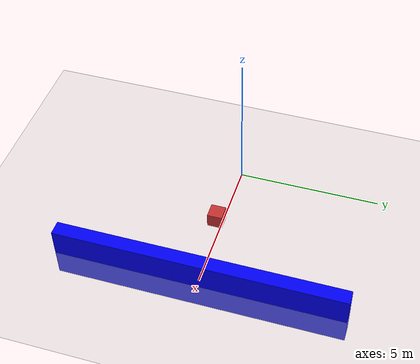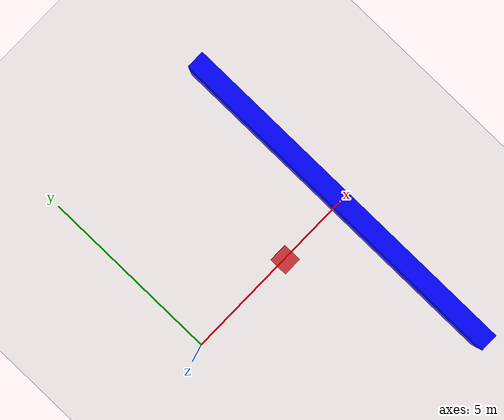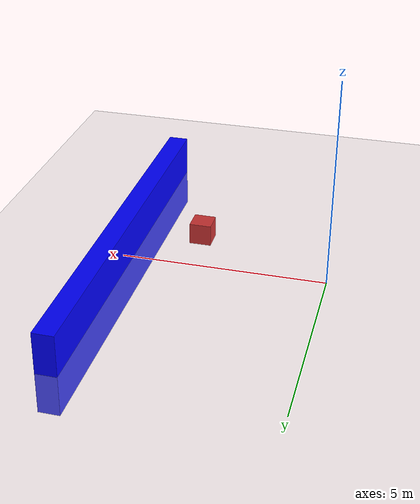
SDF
<?xml version="1.0" ?>
<sdf version="1.7">
    <world name="sensor_world">
        <physics name="1ms" type="ignored">
            <max_step_size>0.001</max_step_size>
            <real_time_factor>1.0</real_time_factor>
        </physics>
        <plugin
            filename="ignition-gazebo-physics-system"
            name="ignition::gazebo::systems::Physics">
        </plugin>
        <plugin
            filename="ignition-gazebo-user-commands-system"
            name="ignition::gazebo::systems::UserCommands">
        </plugin>
        <plugin
            filename="ignition-gazebo-scene-broadcaster-system"
            name="ignition::gazebo::systems::SceneBroadcaster">
        </plugin>
        <plugin filename="ignition-gazebo-imu-system"
                name="ignition::gazebo::systems::Imu">
        </plugin>
        <plugin filename="ignition-gazebo-sensors-system"
                name="ignition::gazebo::systems::Sensors">
            <render_engine>ogre2</render_engine>
        </plugin>
        <plugin filename="ignition-gazebo-contact-system"
                name="ignition::gazebo::systems::Contact">
        </plugin>
        <plugin filename="/home/david/workspace/src/ign-gazebo/examples/plugin/system_plugin/build/libAttachableJoint.so" name="attachable_joint::AttachableJoint">
        </plugin>

        <plugin filename="/home/david/workspace/src/ign-gazebo/examples/plugin/AttacherContact/build/libAttacherContact.so"
                name="attacher_contact::AttacherContact">
          <time>0.001</time>
          <enabled>true</enabled>
        </plugin>

        <gui fullscreen="0">

            <!-- 3D scene -->
            <plugin filename="GzScene3D" name="3D View">
                <ignition-gui>
                <title>3D View</title>
                <property type="bool" key="showTitleBar">false</property>
                <property type="string" key="state">docked</property>
                </ignition-gui>

                <engine>ogre2</engine>
                <scene>scene</scene>
                <ambient_light>0.4 0.4 0.4</ambient_light>
                <background_color>0.8 0.8 0.8</background_color>
            </plugin>

            <!-- World control -->
            <plugin filename="WorldControl" name="World control">
                <ignition-gui>
                <title>World control</title>
                <property type="bool" key="showTitleBar">false</property>
                <property type="bool" key="resizable">false</property>
                <property type="double" key="height">72</property>
                <property type="double" key="width">121</property>
                <property type="double" key="z">1</property>

                <property type="string" key="state">floating</property>
                <anchors target="3D View">
                    <line own="left" target="left"/>
                    <line own="bottom" target="bottom"/>
                </anchors>
                </ignition-gui>

                <play_pause>true</play_pause>
                <step>true</step>
                <start_paused>true</start_paused>
                <service>/world/sensor_world/control</service>
                <stats_topic>/world/sensor_world/stats</stats_topic>
            </plugin>

            <!-- World statistics -->
            <plugin filename="WorldStats" name="World stats">
                <ignition-gui>
                <title>World stats</title>
                <property type="bool" key="showTitleBar">false</property>
                <property type="bool" key="resizable">false</property>
                <property type="double" key="height">110</property>
                <property type="double" key="width">290</property>
                <property type="double" key="z">1</property>

                <property type="string" key="state">floating</property>
                <anchors target="3D View">
                    <line own="right" target="right"/>
                    <line own="bottom" target="bottom"/>
                </anchors>
                </ignition-gui>

                <sim_time>true</sim_time>
                <real_time>true</real_time>
                <real_time_factor>true</real_time_factor>
                <iterations>true</iterations>
                <topic>/world/sensor_world/stats</topic>

            </plugin>

            <!-- Entity tree -->
            <plugin filename="EntityTree" name="Entity tree">
            </plugin>

            <!-- KeyPublisher plugin-->
            <plugin filename="KeyPublisher" name="Key Publisher"/>

        </gui>

        <light type="directional" name="sun">
            <cast_shadows>true</cast_shadows>
            <pose>0 0 10 0 0 0</pose>
            <diffuse>0.8 0.8 0.8 1</diffuse>
            <specular>0.2 0.2 0.2 1</specular>
            <attenuation>
                <range>1000</range>
                <constant>0.9</constant>
                <linear>0.01</linear>
                <quadratic>0.001</quadratic>
            </attenuation>
            <direction>-0.5 0.1 -0.9</direction>
        </light>

        <model name="ground_plane">
            <static>true</static>
            <link name="link">
                <collision name="collision">
                <geometry>
                    <plane>
                    <normal>0 0 1</normal>
                    </plane>
                </geometry>
                </collision>
                <visual name="visual">
                <geometry>
                    <plane>
                    <normal>0 0 1</normal>
                    <size>100 100</size>
                    </plane>
                </geometry>
                <material>
                    <ambient>0.8 0.8 0.8 1</ambient>
                    <diffuse>0.8 0.8 0.8 1</diffuse>
                    <specular>0.8 0.8 0.8 1</specular>
                </material>
                </visual>
            </link>
        </model>

        <!--wall-->
        <model name='wall_1'>
            <static>true</static>
            <pose>5 0 0 0 0 0</pose><!--pose relative to the world-->
            <link name='AttachableLink_1_wall_1'>
                <pose/>
                <inertial> <!--inertial properties of the link mass, inertia matix-->
                    <mass>1.14395</mass>
                    <inertia>
                        <ixx>9.532917</ixx>
                        <ixy>0</ixy>
                        <ixz>0</ixz>
                        <iyy>0.023832</iyy>
                        <iyz>0</iyz>
                        <izz>9.556749</izz>
                    </inertia>
                </inertial>
                <visual name='visual'>
                    <geometry>
                        <box>
                            <size>0.5 10.0 2.0</size>
                        </box>
                    </geometry>
                    <!--let's add color to our link-->
                    <material>
                        <ambient>0.0 0.0 1.0 1</ambient>
                        <diffuse>0.0 0.0 1.0 1</diffuse>
                        <specular>0.0 0.0 1.0 1</specular>
                    </material>
                </visual>
                <collision name='collision'> <!--todo: describe why we need the collision-->
                    <geometry>
                        <box>
                            <size>0.5 10.0 2.0</size>
                        </box>
                    </geometry>
                </collision>

            </link>

        </model>

        <model name="box_1">
          <pose>3 0 1 0 0 0</pose>
          <link name="AttachableLink_1_box_1">
            <visual name="v1">
              <geometry>
                <box><size>0.5 0.5 0.5</size></box>
              </geometry>
              <material>
                <diffuse>0.8 0.2 0.2 1</diffuse>
                <specular>1.0 0 0 1</specular>
              </material>
            </visual>
            <collision name="c1">
              <geometry>
                <box><size>1 1 1</size></box>
              </geometry>
            </collision>
          </link>
        </model>
        <!-- Moving Forward-->
        <plugin filename="ignition-gazebo-triggered-publisher-system"
                name="ignition::gazebo::systems::TriggeredPublisher">
            <input type="ignition.msgs.Int32" topic="/keyboard/keypress">
                <match field="data">16777235</match>
            </input>
            <output type="ignition.msgs.Twist" topic="/cmd_vel">
                linear: {x: 0.5}, angular: {z: 0.0}
            </output>
        </plugin>

        <!-- Moving Backward-->
        <plugin filename="ignition-gazebo-triggered-publisher-system"
                name="ignition::gazebo::systems::TriggeredPublisher">
            <input type="ignition.msgs.Int32" topic="/keyboard/keypress">
                <match field="data">16777237</match>
            </input>
            <output type="ignition.msgs.Twist" topic="/cmd_vel">
                linear: {x: -0.5}, angular: {z: 0.0}
            </output>
        </plugin>

        <!-- Rotating right-->
        <plugin filename="ignition-gazebo-triggered-publisher-system"
                name="ignition::gazebo::systems::TriggeredPublisher">
            <input type="ignition.msgs.Int32" topic="/keyboard/keypress">
                <match field="data">16777236</match>
            </input>
            <output type="ignition.msgs.Twist" topic="/cmd_vel">
                linear: {x: 0.0}, angular: {z: -0.5}
            </output>
        </plugin>

        <!--Rotating left-->
        <plugin filename="ignition-gazebo-triggered-publisher-system"
                name="ignition::gazebo::systems::TriggeredPublisher">
            <input type="ignition.msgs.Int32" topic="/keyboard/keypress">
                <match field="data">16777234</match>
            </input>
            <output type="ignition.msgs.Twist" topic="/cmd_vel">
                linear: {x: 0.0}, angular: {z: 0.5}
            </output>
        </plugin>

        <!--stop when hit the wall-->
        <plugin filename="ignition-gazebo-triggered-publisher-system"
                name="ignition::gazebo::systems::TriggeredPublisher">
            <input type="ignition.msgs.Boolean" topic="/wall/touched">
                <match>data: true</match>
            </input>
            <output type="ignition.msgs.StringMsg" topic="/trigger">
                data: "true"
            </output>
        </plugin>

        <plugin filename="ignition-gazebo-triggered-publisher-system"
                name="ignition::gazebo::systems::TriggeredPublisher">
            <input type="ignition.msgs.Boolean" topic="/wall/touched">
                <match>data: false</match>
            </input>
            <output type="ignition.msgs.StringMsg" topic="/trigger">
                data: "false"
            </output>
        </plugin>
    </world>
</sdf>
